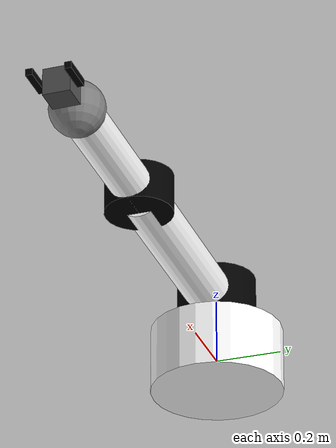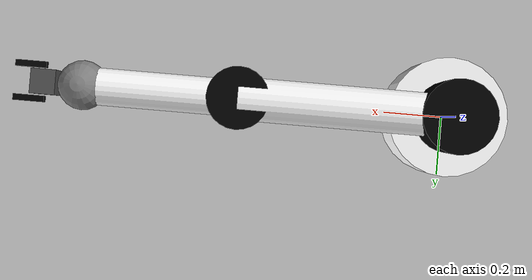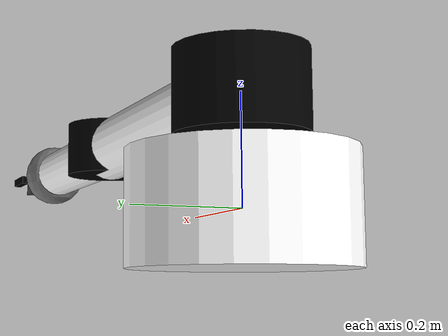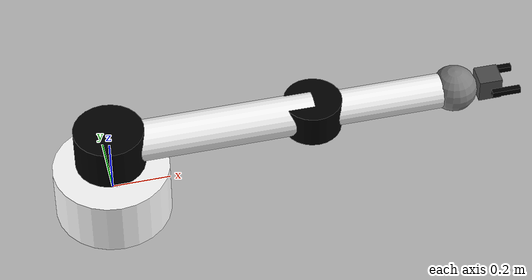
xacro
<?xml version="1.0"?>
<robot name="arm3dof">

<material name="white"><color rgba="1 1 1 1"/></material>
<material name="black"><color rgba="0 0 0 1"/></material>
<material name="grey"><color rgba="0.5 0.5 0.5 1"/></material>
<material name="dark_grey"><color rgba="0.3 0.3 0.3 1"/></material>

<!-- BASE -->
<link name="base_link">
  <visual>
    <geometry>
      <cylinder length="0.2" radius="0.2"/>
    </geometry>
    <material name="white"/>
  </visual>
</link>

<!-- SHOULDER -->
<link name="shoulder">
  <visual>
    <geometry>
      <cylinder length="0.15" radius="0.12"/>
    </geometry>
    <material name="black"/>
  </visual>
</link>

<joint name="joint1" type="revolute">
  <parent link="base_link"/>
  <child link="shoulder"/>
  <origin xyz="0 0 0.2"/>
  <axis xyz="0 0 1"/>
  <limit lower="-3.14" upper="3.14" effort="10" velocity="1"/>
</joint>

<!-- LINK1 -->
<link name="link1">
  <visual>
    <origin xyz="0.35 0 0" rpy="0 1.5707 0"/>
    <geometry>
      <cylinder length="0.7" radius="0.07"/>
    </geometry>
    <material name="white"/>
  </visual>
</link>

<joint name="joint2" type="revolute">
  <parent link="shoulder"/>
  <child link="link1"/>
  <origin xyz="0 0 0"/>
  <axis xyz="0 1 0"/>
  <limit lower="-1.57" upper="1.57" effort="10" velocity="1"/>
</joint>

<!-- ELBOW -->
<link name="elbow">
  <visual>
    <geometry>
      <cylinder length="0.12" radius="0.1"/>
    </geometry>
    <material name="black"/>
  </visual>
</link>

<joint name="joint3" type="revolute">
  <parent link="link1"/>
  <child link="elbow"/>
  <origin xyz="0.7 0 0"/>
  <axis xyz="0 1 0"/>
  <limit lower="-1.57" upper="1.57" effort="10" velocity="1"/>
</joint>

<!-- LINK2 -->
<link name="link2">
  <visual>
    <origin xyz="0.25 0 0" rpy="0 1.5707 0"/>
    <geometry>
      <cylinder length="0.5" radius="0.06"/>
    </geometry>
    <material name="white"/>
  </visual>
</link>

<joint name="joint4" type="revolute">
  <parent link="elbow"/>
  <child link="link2"/>
  <origin xyz="0 0 0"/>
  <axis xyz="0 1 0"/>
  <limit lower="-1.57" upper="1.57" effort="10" velocity="1"/>
</joint>

<!-- WRIST -->
<link name="wrist">
  <visual>
    <geometry>
      <sphere radius="0.08"/>
    </geometry>
    <material name="grey"/>
  </visual>
</link>

<joint name="joint5" type="revolute">
  <parent link="link2"/>
  <child link="wrist"/>
  <origin xyz="0.5 0 0"/>
  <axis xyz="1 0 0"/>
  <limit lower="-1.57" upper="1.57" effort="10" velocity="1"/>
</joint>

<!-- GRIPPER BASE -->
<link name="gripper_base">
  <visual>
    <geometry>
      <box size="0.08 0.08 0.08"/>
    </geometry>
    <material name="dark_grey"/>
  </visual>
</link>

<joint name="gripper_mount" type="fixed">
  <parent link="wrist"/>
  <child link="gripper_base"/>
  <origin xyz="0.12 0 0"/>
</joint>

<!-- LEFT FINGER -->
<link name="left_finger">
  <visual>
    <origin xyz="0.05 0.025 0"/>
    <geometry>
      <box size="0.1 0.02 0.02"/>
    </geometry>
    <material name="black"/>
  </visual>
</link>

<joint name="left_finger_joint" type="revolute">
  <parent link="gripper_base"/>
  <child link="left_finger"/>
  <origin xyz="0 0.03 0"/>
  <axis xyz="0 0 1"/>
  <limit lower="0" upper="0.5" effort="5" velocity="1"/>
</joint>

<!-- RIGHT FINGER -->
<link name="right_finger">
  <visual>
    <origin xyz="0.05 -0.025 0"/>
    <geometry>
      <box size="0.1 0.02 0.02"/>
    </geometry>
    <material name="black"/>
  </visual>
</link>

<joint name="right_finger_joint" type="revolute">
  <parent link="gripper_base"/>
  <child link="right_finger"/>
  <origin xyz="0 -0.03 0"/>
  <axis xyz="0 0 -1"/>
  <limit lower="0" upper="0.5" effort="5" velocity="1"/>
</joint>
</robot>
